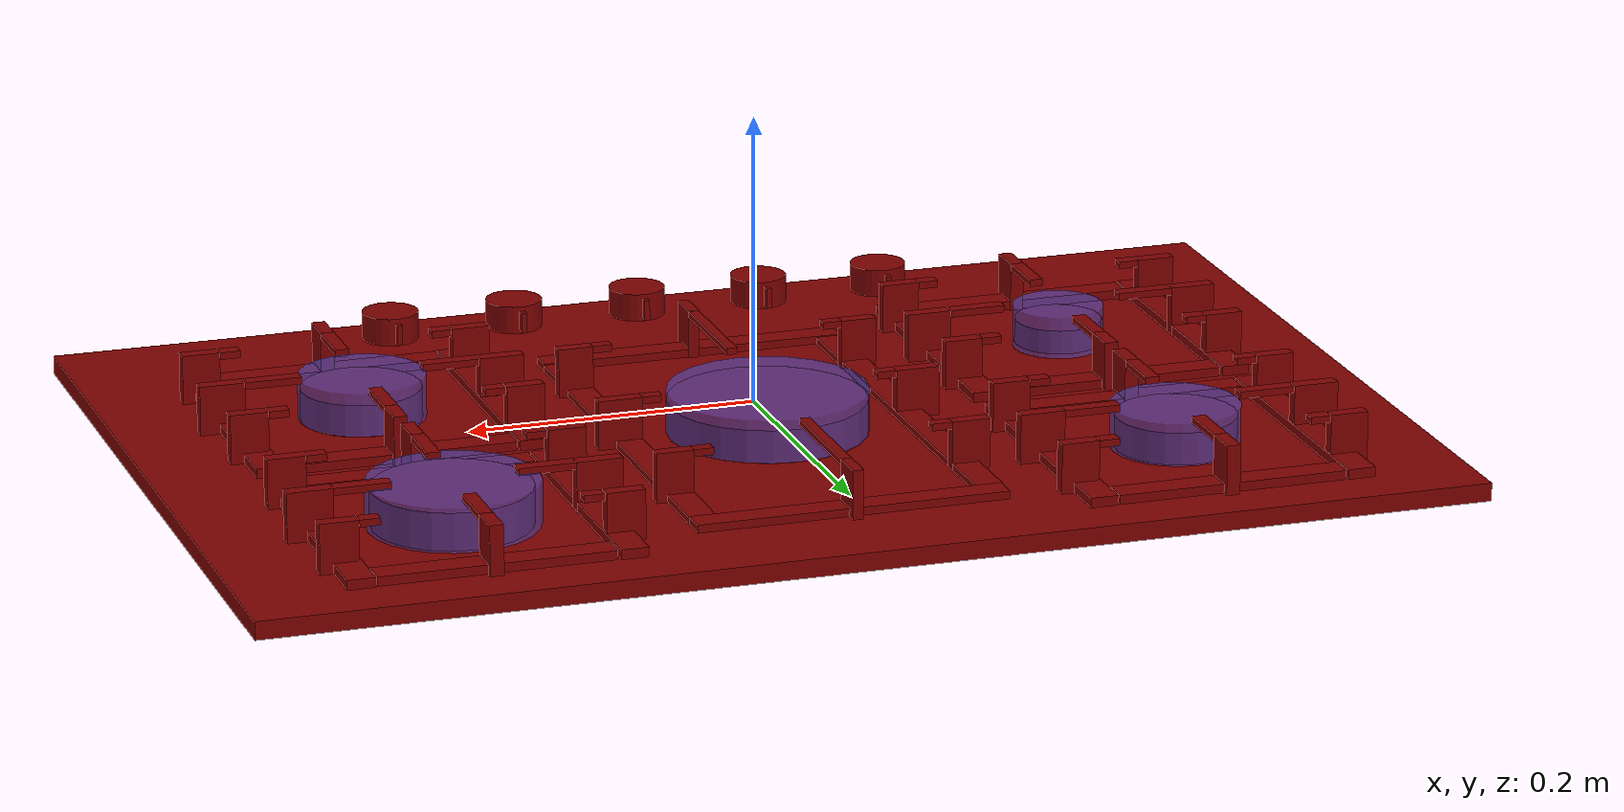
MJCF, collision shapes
<?xml version='1.0' encoding='UTF-8'?>
<mujoco model="model">
  <compiler angle="radian"/>
  <asset>
    <mesh file="visuals/knob_center.obj" name="knob_center_vis"/>
    <mesh file="visuals/knob_front_left.obj" name="knob_front_left_vis"/>
    <mesh file="visuals/knob_front_right.obj" name="knob_front_right_vis"/>
    <mesh file="visuals/knob_rear_left.obj" name="knob_rear_left_vis"/>
    <mesh file="visuals/knob_rear_right.obj" name="knob_rear_right_vis"/>
    <mesh file="visuals/Body001.obj" name="Body001_vis"/>
    <texture file="visuals/T_BC001.png" name="Body001_material" type="2d"/>
    <material name="Body001_material" rgba="1 1 1 1.0" texture="Body001_material" shininess="0.4472135901451111" specular="0.3103448502657381"/>
    <texture file="visuals/T_BC001.png" name="knob_center_material" type="2d"/>
    <material name="knob_center_material" rgba="1 1 1 1.0" texture="knob_center_material" shininess="0.4472135901451111" specular="0.3103448502657381"/>
    <texture file="visuals/T_BC001.png" name="knob_front_left_material" type="2d"/>
    <material name="knob_front_left_material" rgba="1 1 1 1.0" texture="knob_front_left_material" shininess="0.4472135901451111" specular="0.3103448502657381"/>
    <texture file="visuals/T_BC001.png" name="knob_front_right_material" type="2d"/>
    <material name="knob_front_right_material" rgba="1 1 1 1.0" texture="knob_front_right_material" shininess="0.4472135901451111" specular="0.3103448502657381"/>
    <texture file="visuals/T_BC001.png" name="knob_rear_left_material" type="2d"/>
    <material name="knob_rear_left_material" rgba="1 1 1 1.0" texture="knob_rear_left_material" shininess="0.4472135901451111" specular="0.3103448502657381"/>
    <texture file="visuals/T_BC001.png" name="knob_rear_right_material" type="2d"/>
    <material name="knob_rear_right_material" rgba="1 1 1 1.0" texture="knob_rear_right_material" shininess="0.4472135901451111" specular="0.3103448502657381"/>
  </asset>
  <default>
    <default class="visual">
      <geom conaffinity="0" contype="0" group="1" type="mesh"/>
    </default>
    <default class="collision">
      <geom group="0" rgba="0.5 0 0 0.5"/>
    </default>
    <default class="spawn">
      <geom group="0" rgba="1 1 1 0.5" contype="0" conaffinity="0"/>
      <site group="0" rgba="1 1 1 0.5"/>
    </default>
    <default class="region">
      <geom group="1" conaffinity="0" contype="0" rgba="0 1 0 0"/>
    </default>
  </default>
  <worldbody>
    <body>
      <body name="object">
        <site type="cylinder" rgba="0.3 0.4 1 0.5" size="0.06850159913301468 0.015000000596046448" pos="-0.000861 0.026510 0.003227" name="burner_on_center"/>
        <site type="cylinder" rgba="0.3 0.4 1 0.5" size="0.04395541921257973 0.014999999664723873" pos="-0.249603 0.139869 0.002958" name="burner_on_rear_left"/>
        <site type="cylinder" rgba="0.3 0.4 1 0.5" size="0.03147285059094429 0.014999999664723873" pos="-0.249841 -0.085379 0.003025" name="burner_on_front_left"/>
        <site type="cylinder" rgba="0.3 0.4 1 0.5" size="0.057683106511831284 0.014999999664723873" pos="0.250718 0.139869 0.003855" name="burner_on_rear_right"/>
        <site type="cylinder" rgba="0.3 0.4 1 0.5" size="0.043417107313871384 0.014999999664723873" pos="0.250718 -0.084341 0.004489" name="burner_on_front_right"/>
        <geom mesh="Body001_vis" type="mesh" solimp="0.998 0.998 0.001" solref="0.001 1" density="100" friction="0.95 0.3 0.1" class="visual" material="Body001_material"/>
        <geom class="collision" type="box" pos="-0.000361 -0.000399 -0.017617" size="0.41957125067710876 0.2771269381046295 0.0062769027426838875" quat="1.0 0.0 0.0 0.0"/>
        <geom class="collision" type="box" pos="0.340755 -0.085764 -0.007704" size="0.009511222131550312 0.10162844508886337 0.0033623131457716227" quat="1.0 0.0 0.0 0.0"/>
        <geom class="collision" type="box" pos="0.250518 -0.178064 -0.007978" size="0.07949207723140717 0.009285039268434048 0.003089210484176874" quat="1.0 0.0 0.0 0.0"/>
        <geom class="collision" type="box" pos="0.346095 -0.021377 0.005620" size="0.013077699579298496 0.004667441826313734 0.017371144145727158" quat="1.0 0.0 0.0 0.0"/>
        <geom class="collision" type="box" pos="0.325499 -0.021377 0.020586" size="0.006929134018719196 0.004667441826313734 0.0024048304185271263" quat="1.0 0.0 0.0 0.0"/>
        <geom class="collision" type="box" pos="0.312792 -0.085121 0.020586" size="0.019432958215475082 0.004667441826313734 0.0024048304185271263" quat="1.0 0.0 0.0 0.0"/>
        <geom class="collision" type="box" pos="0.348337 -0.085121 0.005681" size="0.015538685023784637 0.004667441826313734 0.01730971224606037" quat="1.0 0.0 0.0 0.0"/>
        <geom class="collision" type="box" pos="0.325573 -0.152435 0.020586" size="0.006929134018719196 0.004667441826313734 0.0024048304185271263" quat="1.0 0.0 0.0 0.0"/>
        <geom class="collision" type="box" pos="0.346095 -0.152435 0.005620" size="0.013077699579298496 0.004667441826313734 0.017371144145727158" quat="1.0 0.0 0.0 0.0"/>
        <geom class="collision" type="box" pos="0.252202 -0.179933 0.005681" size="0.012259948067367077 0.004667441826313734 0.01730971224606037" quat="0.7071068286895752 0.0 -0.0 -0.7071067690849304"/>
        <geom class="collision" type="box" pos="0.252202 -0.148032 0.020586" size="0.019432958215475082 0.004667441826313734 0.0024048304185271263" quat="0.7071068286895752 0.0 -0.0 -0.7071067690849304"/>
        <geom class="collision" type="box" pos="0.252372 -0.024707 0.020586" size="0.019432958215475082 0.004667441826313734 0.0024048304185271263" quat="0.7071068286895752 0.0 0.0 0.7071067690849304"/>
        <geom class="collision" type="box" pos="0.252372 0.007194 0.005681" size="0.012259948067367077 0.004667441826313734 0.01730971224606037" quat="0.7071068286895752 0.0 0.0 0.7071067690849304"/>
        <geom class="collision" type="box" pos="0.250518 0.005564 -0.007978" size="0.07949207723140717 0.009285039268434048 0.003089210484176874" quat="1.0 0.0 0.0 0.0"/>
        <geom class="collision" type="box" pos="0.155990 -0.152209 0.005620" size="0.013077699579298496 0.004667441826313734 0.017371144145727158" quat="1.0 0.0 0.0 0.0"/>
        <geom class="collision" type="box" pos="0.176653 -0.152209 0.020586" size="0.006929134018719196 0.004667441826313734 0.0024048304185271263" quat="1.0 0.0 0.0 0.0"/>
        <geom class="collision" type="box" pos="0.153544 -0.084999 0.005681" size="0.015538685023784637 0.004667441826313734 0.01730971224606037" quat="1.0 0.0 0.0 0.0"/>
        <geom class="collision" type="box" pos="0.189157 -0.084999 0.020586" size="0.019432958215475082 0.004667441826313734 0.0024048304185271263" quat="1.0 0.0 0.0 0.0"/>
        <geom class="collision" type="box" pos="0.176653 -0.021255 0.020586" size="0.006929134018719196 0.004667441826313734 0.0024048304185271263" quat="1.0 0.0 0.0 0.0"/>
        <geom class="collision" type="box" pos="0.155468 -0.021255 0.005620" size="0.013077699579298496 0.004667441826313734 0.017371144145727158" quat="1.0 0.0 0.0 0.0"/>
        <geom class="collision" type="box" pos="0.159756 -0.085764 -0.007704" size="0.009511222131550312 0.10162844508886337 0.0033623131457716227" quat="1.0 0.0 0.0 0.0"/>
        <geom class="collision" type="cylinder" pos="0.251350 -0.084287 -0.000397" size="0.041390273720026016 0.011315751820802689" quat="1.0 0.0 0.0 0.0"/>
        <geom class="collision" type="box" pos="-0.342201 -0.085764 -0.007704" size="0.009511222131550312 0.10162844508886337 0.0033623131457716227" quat="1.0 0.0 0.0 0.0"/>
        <geom class="collision" type="box" pos="-0.346092 -0.020974 0.005620" size="0.013077699579298496 0.004667441826313734 0.017371144145727158" quat="1.0 0.0 0.0 0.0"/>
        <geom class="collision" type="box" pos="-0.325672 -0.020974 0.020586" size="0.006929134018719196 0.004667441826313734 0.0024048304185271263" quat="1.0 0.0 0.0 0.0"/>
        <geom class="collision" type="box" pos="-0.312799 -0.084940 0.020586" size="0.019432958215475082 0.004667441826313734 0.0024048304185271263" quat="1.0 0.0 0.0 0.0"/>
        <geom class="collision" type="box" pos="-0.348184 -0.084940 0.005681" size="0.015538685023784637 0.004667441826313734 0.01730971224606037" quat="1.0 0.0 0.0 0.0"/>
        <geom class="collision" type="box" pos="-0.325969 -0.151982 0.020586" size="0.006929134018719196 0.004667441826313734 0.0024048304185271263" quat="1.0 0.0 0.0 0.0"/>
        <geom class="collision" type="box" pos="-0.346389 -0.151982 0.005620" size="0.013077699579298496 0.004667441826313734 0.017371144145727158" quat="1.0 0.0 0.0 0.0"/>
        <geom class="collision" type="box" pos="-0.251438 0.005706 -0.007978" size="0.07949207723140717 0.009285039268434048 0.003089210484176874" quat="1.0 0.0 0.0 0.0"/>
        <geom class="collision" type="box" pos="-0.156090 -0.152223 0.005620" size="0.013077699579298496 0.004667441826313734 0.017371144145727158" quat="1.0 0.0 0.0 0.0"/>
        <geom class="collision" type="box" pos="-0.176305 -0.152223 0.020586" size="0.006929134018719196 0.004667441826313734 0.0024048304185271263" quat="1.0 0.0 0.0 0.0"/>
        <geom class="collision" type="box" pos="-0.249466 0.007576 0.005681" size="0.012259948067367077 0.004667441826313734 0.01730971224606037" quat="0.7071068286895752 0.0 0.0 0.7071067690849304"/>
        <geom class="collision" type="box" pos="-0.249466 -0.024325 0.020586" size="0.019432958215475082 0.004667441826313734 0.0024048304185271263" quat="0.7071068286895752 0.0 0.0 0.7071067690849304"/>
        <geom class="collision" type="box" pos="-0.153629 -0.084909 0.005681" size="0.015538685023784637 0.004667441826313734 0.01730971224606037" quat="1.0 0.0 0.0 0.0"/>
        <geom class="collision" type="box" pos="-0.188809 -0.084909 0.020586" size="0.019432958215475082 0.004667441826313734 0.0024048304185271263" quat="1.0 0.0 0.0 0.0"/>
        <geom class="collision" type="box" pos="-0.176305 -0.021164 0.020586" size="0.006929134018719196 0.004667441826313734 0.0024048304185271263" quat="1.0 0.0 0.0 0.0"/>
        <geom class="collision" type="box" pos="-0.156090 -0.021164 0.005620" size="0.013077699579298496 0.004667441826313734 0.017371144145727158" quat="1.0 0.0 0.0 0.0"/>
        <geom class="collision" type="box" pos="-0.249585 -0.147892 0.020586" size="0.019432958215475082 0.004667441826313734 0.0024048304185271263" quat="0.7071068286895752 0.0 -0.0 -0.7071067690849304"/>
        <geom class="collision" type="box" pos="-0.249585 -0.179793 0.005681" size="0.012259948067367077 0.004667441826313734 0.01730971224606037" quat="0.7071068286895752 0.0 -0.0 -0.7071067690849304"/>
        <geom class="collision" type="box" pos="-0.251438 -0.177923 -0.007978" size="0.07949207723140717 0.009285039268434048 0.003089210484176874" quat="1.0 0.0 0.0 0.0"/>
        <geom class="collision" type="box" pos="-0.161202 -0.085764 -0.007704" size="0.009511222131550312 0.10162844508886337 0.0033623131457716227" quat="1.0 0.0 0.0 0.0"/>
        <geom class="collision" type="cylinder" pos="-0.249921 -0.085316 -0.000054" size="0.03028465434908867 0.008279569447040558" quat="1.0 0.0 0.0 0.0"/>
        <geom class="collision" type="cylinder" pos="0.251350 0.139015 0.001166" size="0.053853049874305725 0.01332746259868145" quat="1.0 0.0 0.0 0.0"/>
        <geom class="collision" type="cylinder" pos="-0.000583 0.026214 -0.000080" size="0.06814379245042801 0.01148492656648159" quat="1.0 0.0 0.0 0.0"/>
        <geom class="collision" type="cylinder" pos="-0.250026 0.139848 -0.000397" size="0.041390273720026016 0.011315751820802689" quat="1.0 0.0 0.0 0.0"/>
        <geom class="collision" type="box" pos="0.159073 0.139059 -0.007704" size="0.009511222131550312 0.10162844508886337 0.0033623131457716227" quat="1.0 0.0 0.0 0.0"/>
        <geom class="collision" type="box" pos="0.154785 0.203568 0.005620" size="0.013077699579298496 0.004667441826313734 0.017371144145727158" quat="1.0 0.0 0.0 0.0"/>
        <geom class="collision" type="box" pos="0.175970 0.203568 0.020586" size="0.006929134018719196 0.004667441826313734 0.0024048304185271263" quat="1.0 0.0 0.0 0.0"/>
        <geom class="collision" type="box" pos="0.188474 0.139824 0.020586" size="0.019432958215475082 0.004667441826313734 0.0024048304185271263" quat="1.0 0.0 0.0 0.0"/>
        <geom class="collision" type="box" pos="0.152933 0.139824 0.005681" size="0.015772372484207153 0.004667441826313734 0.01730971224606037" quat="1.0 0.0 0.0 0.0"/>
        <geom class="collision" type="box" pos="0.175970 0.072510 0.020586" size="0.006929134018719196 0.004667441826313734 0.0024048304185271263" quat="1.0 0.0 0.0 0.0"/>
        <geom class="collision" type="box" pos="0.154785 0.072510 0.005620" size="0.013077699579298496 0.004667441826313734 0.017371144145727158" quat="1.0 0.0 0.0 0.0"/>
        <geom class="collision" type="box" pos="0.249835 0.230094 -0.007978" size="0.07949207723140717 0.009285039268434048 0.003089210484176874" quat="1.0 0.0 0.0 0.0"/>
        <geom class="collision" type="box" pos="0.345412 0.072335 0.005620" size="0.013077699579298496 0.004667441826313734 0.017371144145727158" quat="1.0 0.0 0.0 0.0"/>
        <geom class="collision" type="box" pos="0.324978 0.072335 0.020586" size="0.006929134018719196 0.004667441826313734 0.0024048304185271263" quat="1.0 0.0 0.0 0.0"/>
        <geom class="collision" type="box" pos="0.251877 0.231964 0.005681" size="0.012259948067367077 0.004667441826313734 0.01730971224606037" quat="0.7071068286895752 0.0 0.0 0.7071067690849304"/>
        <geom class="collision" type="box" pos="0.251877 0.200063 0.020586" size="0.019432958215475082 0.004667441826313734 0.0024048304185271263" quat="0.7071068286895752 0.0 0.0 0.7071067690849304"/>
        <geom class="collision" type="box" pos="0.347654 0.139649 0.005681" size="0.015538685023784637 0.004667441826313734 0.01730971224606037" quat="1.0 0.0 0.0 0.0"/>
        <geom class="collision" type="box" pos="0.312474 0.139649 0.020586" size="0.019432958215475082 0.004667441826313734 0.0024048304185271263" quat="1.0 0.0 0.0 0.0"/>
        <geom class="collision" type="box" pos="0.324978 0.203394 0.020586" size="0.006929134018719196 0.004667441826313734 0.0024048304185271263" quat="1.0 0.0 0.0 0.0"/>
        <geom class="collision" type="box" pos="0.345412 0.203394 0.005620" size="0.013077699579298496 0.004667441826313734 0.017371144145727158" quat="1.0 0.0 0.0 0.0"/>
        <geom class="collision" type="box" pos="0.251470 0.076643 0.020586" size="0.019432958215475082 0.004667441826313734 0.0024048304185271263" quat="0.7071068286895752 0.0 -0.0 -0.7071067690849304"/>
        <geom class="collision" type="box" pos="0.251470 0.044742 0.005681" size="0.012259948067367077 0.004667441826313734 0.01730971224606037" quat="0.7071068286895752 0.0 -0.0 -0.7071067690849304"/>
        <geom class="collision" type="box" pos="0.249835 0.046612 -0.007978" size="0.07949207723140717 0.009285039268434048 0.003089210484176874" quat="1.0 0.0 0.0 0.0"/>
        <geom class="collision" type="box" pos="0.340072 0.139059 -0.007704" size="0.009511222131550312 0.10162844508886337 0.0033623131457716227" quat="1.0 0.0 0.0 0.0"/>
        <geom class="collision" type="box" pos="-0.161231 0.139739 -0.007704" size="0.009511222131550312 0.10162844508886337 0.0033623131457716227" quat="1.0 0.0 0.0 0.0"/>
        <geom class="collision" type="box" pos="-0.251467 0.047694 -0.007978" size="0.07949207723140717 0.009285039268434048 0.003089210484176874" quat="1.0 0.0 0.0 0.0"/>
        <geom class="collision" type="box" pos="-0.249614 0.046116 0.005681" size="0.012259948067367077 0.004667441826313734 0.01730971224606037" quat="0.7071068286895752 0.0 -0.0 -0.7071067690849304"/>
        <geom class="collision" type="box" pos="-0.249614 0.078017 0.020586" size="0.019432958215475082 0.004667441826313734 0.0024048304185271263" quat="0.7071068286895752 0.0 -0.0 -0.7071067690849304"/>
        <geom class="collision" type="box" pos="-0.156259 0.204831 0.005620" size="0.013077699579298496 0.004667441826313734 0.017371144145727158" quat="1.0 0.0 0.0 0.0"/>
        <geom class="collision" type="box" pos="-0.176474 0.204831 0.020586" size="0.006929134018719196 0.004667441826313734 0.0024048304185271263" quat="1.0 0.0 0.0 0.0"/>
        <geom class="collision" type="box" pos="-0.188731 0.140595 0.020586" size="0.019432958215475082 0.004667441826313734 0.0024048304185271263" quat="1.0 0.0 0.0 0.0"/>
        <geom class="collision" type="box" pos="-0.153552 0.140595 0.005681" size="0.015538685023784637 0.004667441826313734 0.01730971224606037" quat="1.0 0.0 0.0 0.0"/>
        <geom class="collision" type="box" pos="-0.249434 0.201491 0.020586" size="0.019432958215475082 0.004667441826313734 0.0024048304185271263" quat="0.7071068286895752 0.0 0.0 0.7071067690849304"/>
        <geom class="collision" type="box" pos="-0.249434 0.233391 0.005681" size="0.012259948067367077 0.004667441826313734 0.01730971224606037" quat="0.7071068286895752 0.0 0.0 0.7071067690849304"/>
        <geom class="collision" type="box" pos="-0.176334 0.073281 0.020586" size="0.006929134018719196 0.004667441826313734 0.0024048304185271263" quat="1.0 0.0 0.0 0.0"/>
        <geom class="collision" type="box" pos="-0.156119 0.073281 0.005620" size="0.013077699579298496 0.004667441826313734 0.017371144145727158" quat="1.0 0.0 0.0 0.0"/>
        <geom class="collision" type="box" pos="-0.251718 0.231477 -0.007978" size="0.07949207723140717 0.009285039268434048 0.003089210484176874" quat="1.0 0.0 0.0 0.0"/>
        <geom class="collision" type="box" pos="-0.346003 0.073981 0.005620" size="0.013077699579298496 0.004667441826313734 0.017371144145727158" quat="1.0 0.0 0.0 0.0"/>
        <geom class="collision" type="box" pos="-0.325583 0.073981 0.020586" size="0.006929134018719196 0.004667441826313734 0.0024048304185271263" quat="1.0 0.0 0.0 0.0"/>
        <geom class="collision" type="box" pos="-0.348406 0.140846 0.005681" size="0.015538685023784637 0.004667441826313734 0.01730971224606037" quat="1.0 0.0 0.0 0.0"/>
        <geom class="collision" type="box" pos="-0.312967 0.140846 0.020586" size="0.019432958215475082 0.004667441826313734 0.0024048304185271263" quat="1.0 0.0 0.0 0.0"/>
        <geom class="collision" type="box" pos="-0.325583 0.204726 0.020586" size="0.006929134018719196 0.004667441826313734 0.0024048304185271263" quat="1.0 0.0 0.0 0.0"/>
        <geom class="collision" type="box" pos="-0.346003 0.204726 0.005620" size="0.013077699579298496 0.004667441826313734 0.017371144145727158" quat="1.0 0.0 0.0 0.0"/>
        <geom class="collision" type="box" pos="-0.342230 0.139739 -0.007704" size="0.009511222131550312 0.10162844508886337 0.0033623131457716227" quat="1.0 0.0 0.0 0.0"/>
        <geom class="collision" type="box" pos="-0.000572 0.199021 -0.008327" size="0.10723117738962173 0.008934126235544682 0.00274004228413105" quat="1.0 0.0 0.0 0.0"/>
        <geom class="collision" type="box" pos="-0.000574 0.202409 0.005495" size="0.012259948067367077 0.0036702656652778387 0.017123673111200333" quat="0.7071068286895752 0.0 0.0 0.7071067690849304"/>
        <geom class="collision" type="box" pos="-0.000574 0.147095 0.020400" size="0.042845793068408966 0.003670267527922988 0.0022187919821590185" quat="0.7071068286895752 0.0 0.0 0.7071067690849304"/>
        <geom class="collision" type="box" pos="-0.000574 -0.093159 0.020400" size="0.042845793068408966 0.003670267527922988 0.0022187919821590185" quat="0.7071068286895752 0.0 -0.0 -0.7071067690849304"/>
        <geom class="collision" type="box" pos="-0.000971 -0.149077 0.005495" size="0.012259948067367077 0.0036702656652778387 0.017123673111200333" quat="0.7071068286895752 0.0 -0.0 -0.7071067690849304"/>
        <geom class="collision" type="box" pos="-0.000572 -0.146962 -0.008327" size="0.10723117738962173 0.008934126235544682 0.00274004228413105" quat="1.0 0.0 0.0 0.0"/>
        <geom class="collision" type="box" pos="0.081694 0.026919 0.020586" size="0.00679558701813221 0.004085940774530172 0.0024048304185271263" quat="1.0 0.0 0.0 0.0"/>
        <geom class="collision" type="box" pos="0.103907 0.027051 0.005620" size="0.015342408791184425 0.0044255792163312435 0.017371144145727158" quat="1.0 0.0 0.0 0.0"/>
        <geom class="collision" type="box" pos="0.097826 0.026209 -0.008580" size="0.009199237450957298 0.1635657101869583 0.0024864692240953445" quat="1.0 0.0 0.0 0.0"/>
        <geom class="collision" type="box" pos="0.101315 0.139939 0.005620" size="0.012750166468322277 0.0044255792163312435 0.017371144145727158" quat="1.0 0.0 0.0 0.0"/>
        <geom class="collision" type="box" pos="0.081694 0.139806 0.020586" size="0.00679558701813221 0.004085940774530172 0.0024048304185271263" quat="1.0 0.0 0.0 0.0"/>
        <geom class="collision" type="box" pos="0.081694 -0.086106 0.020586" size="0.00679558701813221 0.004085940774530172 0.0024048304185271263" quat="1.0 0.0 0.0 0.0"/>
        <geom class="collision" type="box" pos="0.100805 -0.085973 0.005620" size="0.012239904142916203 0.0044255792163312435 0.017371144145727158" quat="1.0 0.0 0.0 0.0"/>
        <geom class="collision" type="box" pos="-0.102453 -0.086145 0.005620" size="0.012298681773245335 0.0044255792163312435 0.017371144145727158" quat="1.0 0.0 0.0 0.0"/>
        <geom class="collision" type="box" pos="-0.083356 -0.086277 0.020586" size="0.00679558701813221 0.004085940774530172 0.0024048304185271263" quat="1.0 0.0 0.0 0.0"/>
        <geom class="collision" type="box" pos="-0.083356 0.139806 0.020586" size="0.00679558701813221 0.004085940774530172 0.0024048304185271263" quat="1.0 0.0 0.0 0.0"/>
        <geom class="collision" type="box" pos="-0.103484 0.139939 0.005620" size="0.0133298859000206 0.0044255792163312435 0.017371144145727158" quat="1.0 0.0 0.0 0.0"/>
        <geom class="collision" type="box" pos="-0.099787 0.026209 -0.008580" size="0.009199237450957298 0.1635657101869583 0.0024864692240953445" quat="1.0 0.0 0.0 0.0"/>
        <geom class="collision" type="box" pos="-0.105847 0.026963 0.005620" size="0.015184118412435055 0.0044255792163312435 0.017371144145727158" quat="1.0 0.0 0.0 0.0"/>
        <geom class="collision" type="box" pos="-0.083864 0.026831 0.020586" size="0.00679558701813221 0.004085940774530172 0.0024048304185271263" quat="1.0 0.0 0.0 0.0"/>
        <body name="knob_center">
          <joint axis="0.0 0.0 1.0" pos="0.007458 -0.242478 -0.000465" limited="true" name="knob_center_joint" range="0.0 3.6651914291880923" type="hinge" damping="0.05" armature="0.001"/>
          <geom mesh="knob_center_vis" type="mesh" solimp="0.998 0.998 0.001" solref="0.001 1" density="100" friction="0.95 0.3 0.1" class="visual" material="knob_center_material"/>
          <geom class="collision" type="box" pos="0.007461 -0.220869 -0.001494" size="0.0017808674601837993 0.0031232626643031836 0.007129808887839317" quat="1.0 0.0 0.0 0.0"/>
          <geom class="collision" type="cylinder" pos="0.007527 -0.242528 -0.000840" size="0.01965462788939476 0.009692679159343243" quat="1.0 0.0 0.0 0.0"/>
        </body>
        <body name="knob_front_left">
          <joint axis="0.0 0.0 1.0" pos="-0.171848 -0.242478 -0.000465" limited="true" name="knob_front_left_joint" range="0.0 3.6651914291880923" type="hinge" damping="0.05" armature="0.001"/>
          <geom mesh="knob_front_left_vis" type="mesh" solimp="0.998 0.998 0.001" solref="0.001 1" density="100" friction="0.95 0.3 0.1" class="visual" material="knob_front_left_material"/>
          <geom class="collision" type="cylinder" pos="-0.171775 -0.242528 -0.000840" size="0.01965462788939476 0.009692679159343243" quat="1.0 0.0 0.0 0.0"/>
          <geom class="collision" type="box" pos="-0.171841 -0.220869 -0.001494" size="0.0017808674601837993 0.0031232626643031836 0.007129808887839317" quat="1.0 0.0 0.0 0.0"/>
        </body>
        <body name="knob_front_right">
          <joint axis="0.0 0.0 1.0" pos="0.187080 -0.242478 -0.000465" limited="true" name="knob_front_right_joint" range="0.0 3.6651914291880923" type="hinge" damping="0.05" armature="0.001"/>
          <geom mesh="knob_front_right_vis" type="mesh" solimp="0.998 0.998 0.001" solref="0.001 1" density="100" friction="0.95 0.3 0.1" class="visual" material="knob_front_right_material"/>
          <geom class="collision" type="cylinder" pos="0.187194 -0.242528 -0.000840" size="0.01965462788939476 0.009692679159343243" quat="1.0 0.0 0.0 0.0"/>
          <geom class="collision" type="box" pos="0.187127 -0.220869 -0.001494" size="0.0017808674601837993 0.0031232626643031836 0.007129808887839317" quat="1.0 0.0 0.0 0.0"/>
        </body>
        <body name="knob_rear_left">
          <joint axis="0.0 0.0 1.0" pos="-0.082402 -0.242478 -0.000465" limited="true" name="knob_rear_left_joint" range="0.0 3.6651914291880923" type="hinge" damping="0.05" armature="0.001"/>
          <geom mesh="knob_rear_left_vis" type="mesh" solimp="0.998 0.998 0.001" solref="0.001 1" density="100" friction="0.95 0.3 0.1" class="visual" material="knob_rear_left_material"/>
          <geom class="collision" type="cylinder" pos="-0.082330 -0.242528 -0.000840" size="0.01965462788939476 0.009692679159343243" quat="1.0 0.0 0.0 0.0"/>
          <geom class="collision" type="box" pos="-0.082396 -0.220869 -0.001494" size="0.0017808674601837993 0.0031232626643031836 0.007129808887839317" quat="1.0 0.0 0.0 0.0"/>
        </body>
        <body name="knob_rear_right">
          <joint axis="0.0 0.0 1.0" pos="0.097446 -0.242478 -0.000465" limited="true" name="knob_rear_right_joint" range="0.0 3.6651914291880923" type="hinge" damping="0.05" armature="0.001"/>
          <geom mesh="knob_rear_right_vis" type="mesh" solimp="0.998 0.998 0.001" solref="0.001 1" density="100" friction="0.95 0.3 0.1" class="visual" material="knob_rear_right_material"/>
          <geom class="collision" type="cylinder" pos="0.097501 -0.242528 -0.000840" size="0.01965462788939476 0.009692679159343243" quat="1.0 0.0 0.0 0.0"/>
          <geom class="collision" type="box" pos="0.097435 -0.220869 -0.001494" size="0.0017808674601837993 0.0031232626643031836 0.007129808887839317" quat="1.0 0.0 0.0 0.0"/>
        </body>
        <geom class="region" name="reg_main" type="box" pos="-4.999999999866223e-07 0.0 -0.017148999999999998" size="0.41863649999999997 0.276408 0.005493"/>
      </body>
    </body>
  </worldbody>
  <actuator>
    <motor name="knob_center_joint_actuator" joint="knob_center_joint" gear="10"/>
    <motor name="knob_front_left_joint_actuator" joint="knob_front_left_joint" gear="10"/>
    <motor name="knob_front_right_joint_actuator" joint="knob_front_right_joint" gear="10"/>
    <motor name="knob_rear_left_joint_actuator" joint="knob_rear_left_joint" gear="10"/>
    <motor name="knob_rear_right_joint_actuator" joint="knob_rear_right_joint" gear="10"/>
  </actuator>
</mujoco>
